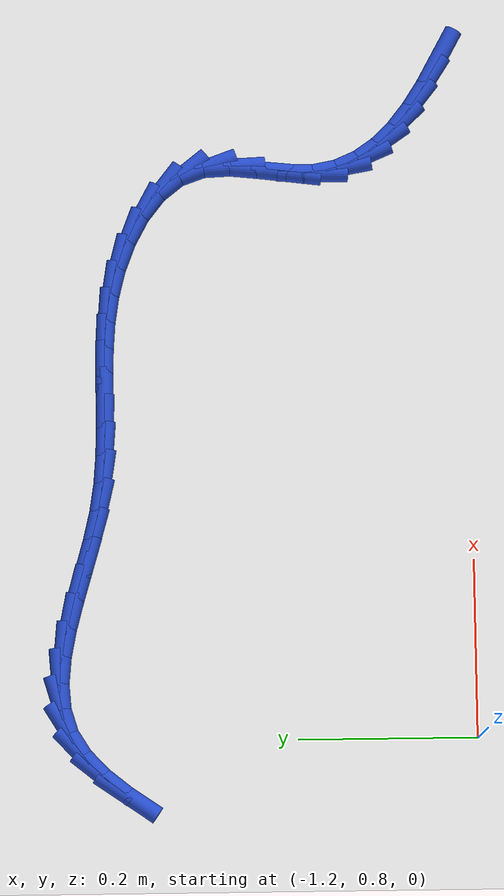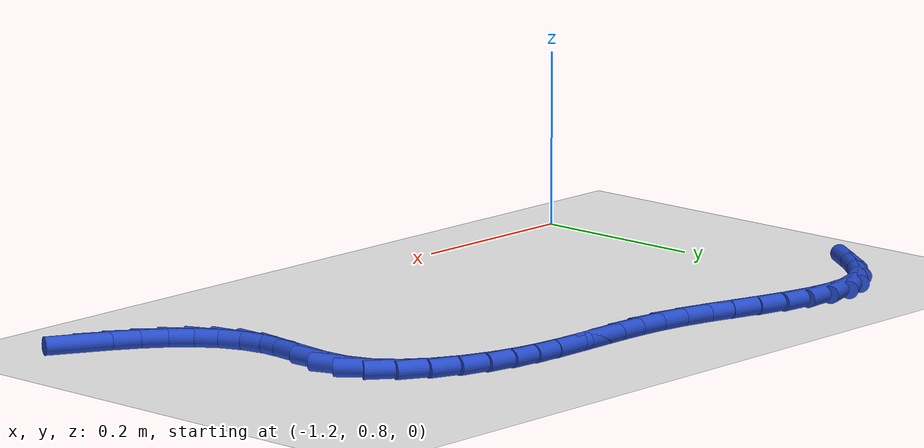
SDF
<sdf version="1.6">
 <world name="default">
  <model name="ground_plane">
   <static>1</static>
   <link name="link">
    <collision name="collision">
     <geometry><plane><normal>0 0 1</normal><size>100 100</size></plane></geometry>
     <surface><friction><ode><mu>100</mu><mu2>50</mu2></ode></friction></surface>
    </collision>
    <visual name="visual">
     <cast_shadows>0</cast_shadows>
     <geometry><plane><normal>0 0 1</normal><size>100 100</size></plane></geometry>
     <material>
      <script><uri>file://media/materials/scripts/gazebo.material</uri><name>Gazebo/WhiteGlow</name></script>
     </material>
    </visual>
   </link>
  </model>
  <model name="line">
   <link name="link_32">
    <pose>-0.4301493578791611 0.8303120803442311 0.01 0 1.57 -0.5000535907732365</pose>
    <collision name="collision">
     <geometry><cylinder><radius>0.01</radius><length>0.08</length></cylinder></geometry>
    </collision>
    <visual name="visual">
     <material>
      <script><name>Gazebo/Blue</name><uri>file://media/materials/scripts/gazebo.material</uri></script>
     </material>
     <geometry><cylinder><radius>0.01</radius><length>0.08</length></cylinder></geometry>
    </visual>
   </link>
   <link name="link_33">
    <pose>-0.4589386479684631 0.8460417445549768 0.01 0 1.57 -0.5705406208517386</pose>
    <collision name="collision">
     <geometry><cylinder><radius>0.01</radius><length>0.08</length></cylinder></geometry>
    </collision>
    <visual name="visual">
     <material>
      <script><name>Gazebo/Blue</name><uri>file://media/materials/scripts/gazebo.material</uri></script>
     </material>
     <geometry><cylinder><radius>0.01</radius><length>0.08</length></cylinder></geometry>
    </visual>
   </link>
   <link name="link_34">
    <pose>-0.4851997209454305 0.8628943035179809 0.01 0 1.57 -0.6680112293867284</pose>
    <collision name="collision">
     <geometry><cylinder><radius>0.01</radius><length>0.08</length></cylinder></geometry>
    </collision>
    <visual name="visual">
     <material>
      <script><name>Gazebo/Blue</name><uri>file://media/materials/scripts/gazebo.material</uri></script>
     </material>
     <geometry><cylinder><radius>0.01</radius><length>0.08</length></cylinder></geometry>
    </visual>
   </link>
   <link name="link_35">
    <pose>-0.5083643654585064 0.8811717224592412 0.01 0 1.57 -0.7981616529215781</pose>
    <collision name="collision">
     <geometry><cylinder><radius>0.01</radius><length>0.08</length></cylinder></geometry>
    </collision>
    <visual name="visual">
     <material>
      <script><name>Gazebo/Blue</name><uri>file://media/materials/scripts/gazebo.material</uri></script>
     </material>
     <geometry><cylinder><radius>0.01</radius><length>0.08</length></cylinder></geometry>
    </visual>
   </link>
   <link name="link_36">
    <pose>-0.5278643701561339 0.9011759666047564 0.01 0 1.57 -0.964837150017176</pose>
    <collision name="collision">
     <geometry><cylinder><radius>0.01</radius><length>0.08</length></cylinder></geometry>
    </collision>
    <visual name="visual">
     <material>
      <script><name>Gazebo/Blue</name><uri>file://media/materials/scripts/gazebo.material</uri></script>
     </material>
     <geometry><cylinder><radius>0.01</radius><length>0.08</length></cylinder></geometry>
    </visual>
   </link>
   <link name="link_37">
    <pose>-0.5431315236867555 0.9232090011805236 0.01 0 1.57 -1.165056455571028</pose>
    <collision name="collision">
     <geometry><cylinder><radius>0.01</radius><length>0.08</length></cylinder></geometry>
    </collision>
    <visual name="visual">
     <material>
      <script><name>Gazebo/Blue</name><uri>file://media/materials/scripts/gazebo.material</uri></script>
     </material>
     <geometry><cylinder><radius>0.01</radius><length>0.08</length></cylinder></geometry>
    </visual>
   </link>
   <link name="link_38">
    <pose>-0.5535976146988142 0.9475727914125407 0.01 0 1.57 -1.3841972647437364</pose>
    <collision name="collision">
     <geometry><cylinder><radius>0.01</radius><length>0.08</length></cylinder></geometry>
    </collision>
    <visual name="visual">
     <material>
      <script><name>Gazebo/Blue</name><uri>file://media/materials/scripts/gazebo.material</uri></script>
     </material>
     <geometry><cylinder><radius>0.01</radius><length>0.08</length></cylinder></geometry>
    </visual>
   </link>
   <link name="link_39">
    <pose>-0.5586944318407532 0.9745693025268061 0.01 0 1.57 1.5515692944739972</pose>
    <collision name="collision">
     <geometry><cylinder><radius>0.01</radius><length>0.08</length></cylinder></geometry>
    </collision>
    <visual name="visual">
     <material>
      <script><name>Gazebo/Blue</name><uri>file://media/materials/scripts/gazebo.material</uri></script>
     </material>
     <geometry><cylinder><radius>0.01</radius><length>0.08</length></cylinder></geometry>
    </visual>
   </link>
   <link name="link_40">
    <pose>-0.558121068033776 1.004386340444647 0.01 0 1.57 1.4497419668480511</pose>
    <collision name="collision">
     <geometry><cylinder><radius>0.01</radius><length>0.08</length></cylinder></geometry>
    </collision>
    <visual name="visual">
     <material>
      <script><name>Gazebo/Blue</name><uri>file://media/materials/scripts/gazebo.material</uri></script>
     </material>
     <geometry><cylinder><radius>0.01</radius><length>0.08</length></cylinder></geometry>
    </visual>
   </link>
   <link name="link_41">
    <pose>-0.5542677003114657 1.0360624129938558 0.01 0 1.57 1.4712720267406707</pose>
    <collision name="collision">
     <geometry><cylinder><radius>0.01</radius><length>0.08</length></cylinder></geometry>
    </collision>
    <visual name="visual">
     <material>
      <script><name>Gazebo/Blue</name><uri>file://media/materials/scripts/gazebo.material</uri></script>
     </material>
     <geometry><cylinder><radius>0.01</radius><length>0.08</length></cylinder></geometry>
    </visual>
   </link>
   <link name="link_42">
    <pose>-0.5510814858198664 1.067971078784661 0.01 0 1.57 -1.5233975627310024</pose>
    <collision name="collision">
     <geometry><cylinder><radius>0.01</radius><length>0.08</length></cylinder></geometry>
    </collision>
    <visual name="visual">
     <material>
      <script><name>Gazebo/Blue</name><uri>file://media/materials/scripts/gazebo.material</uri></script>
     </material>
     <geometry><cylinder><radius>0.01</radius><length>0.08</length></cylinder></geometry>
    </visual>
   </link>
   <link name="link_43">
    <pose>-0.5525285503235546 1.0984777953809441 0.01 0 1.57 -1.2261778521186517</pose>
    <collision name="collision">
     <geometry><cylinder><radius>0.01</radius><length>0.08</length></cylinder></geometry>
    </collision>
    <visual name="visual">
     <material>
      <script><name>Gazebo/Blue</name><uri>file://media/materials/scripts/gazebo.material</uri></script>
     </material>
     <geometry><cylinder><radius>0.01</radius><length>0.08</length></cylinder></geometry>
    </visual>
   </link>
   <link name="link_44">
    <pose>-0.562403459420681 1.1259889658442297 0.01 0 1.57 -0.8995294904261377</pose>
    <collision name="collision">
     <geometry><cylinder><radius>0.01</radius><length>0.08</length></cylinder></geometry>
    </collision>
    <visual name="visual">
     <material>
      <script><name>Gazebo/Blue</name><uri>file://media/materials/scripts/gazebo.material</uri></script>
     </material>
     <geometry><cylinder><radius>0.01</radius><length>0.08</length></cylinder></geometry>
    </visual>
   </link>
   <link name="link_45">
    <pose>-0.5812307617381497 1.14969143356187 0.01 0 1.57 -0.6622195922462348</pose>
    <collision name="collision">
     <geometry><cylinder><radius>0.01</radius><length>0.08</length></cylinder></geometry>
    </collision>
    <visual name="visual">
     <material>
      <script><name>Gazebo/Blue</name><uri>file://media/materials/scripts/gazebo.material</uri></script>
     </material>
     <geometry><cylinder><radius>0.01</radius><length>0.08</length></cylinder></geometry>
    </visual>
   </link>
   <link name="link_46">
    <pose>-0.6066014927486344 1.1694721703860071 0.01 0 1.57 -0.4923419884603313</pose>
    <collision name="collision">
     <geometry><cylinder><radius>0.01</radius><length>0.08</length></cylinder></geometry>
    </collision>
    <visual name="visual">
     <material>
      <script><name>Gazebo/Blue</name><uri>file://media/materials/scripts/gazebo.material</uri></script>
     </material>
     <geometry><cylinder><radius>0.01</radius><length>0.08</length></cylinder></geometry>
    </visual>
   </link>
   <link name="link_47">
    <pose>-0.6360026774160213 1.1852429718917425 0.01 0 1.57 -0.36097903088992506</pose>
    <collision name="collision">
     <geometry><cylinder><radius>0.01</radius><length>0.08</length></cylinder></geometry>
    </collision>
    <visual name="visual">
     <material>
      <script><name>Gazebo/Blue</name><uri>file://media/materials/scripts/gazebo.material</uri></script>
     </material>
     <geometry><cylinder><radius>0.01</radius><length>0.08</length></cylinder></geometry>
    </visual>
   </link>
   <link name="link_48">
    <pose>-0.6669270284989377 1.1969175639346736 0.01 0 1.57 -0.2473888436634144</pose>
    <collision name="collision">
     <geometry><cylinder><radius>0.01</radius><length>0.08</length></cylinder></geometry>
    </collision>
    <visual name="visual">
     <material>
      <script><name>Gazebo/Blue</name><uri>file://media/materials/scripts/gazebo.material</uri></script>
     </material>
     <geometry><cylinder><radius>0.01</radius><length>0.08</length></cylinder></geometry>
    </visual>
   </link>
   <link name="link_49">
    <pose>-0.6976697806847293 1.2046820261555424 0.01 0 1.57 -0.14951673683604147</pose>
    <collision name="collision">
     <geometry><cylinder><radius>0.01</radius><length>0.08</length></cylinder></geometry>
    </collision>
    <visual name="visual">
     <material>
      <script><name>Gazebo/Blue</name><uri>file://media/materials/scripts/gazebo.material</uri></script>
     </material>
     <geometry><cylinder><radius>0.01</radius><length>0.08</length></cylinder></geometry>
    </visual>
   </link>
   <link name="link_50">
    <pose>-0.7281503905147529 1.2092736542479174 0.01 0 1.57 -0.07314154999572284</pose>
    <collision name="collision">
     <geometry><cylinder><radius>0.01</radius><length>0.08</length></cylinder></geometry>
    </collision>
    <visual name="visual">
     <material>
      <script><name>Gazebo/Blue</name><uri>file://media/materials/scripts/gazebo.material</uri></script>
     </material>
     <geometry><cylinder><radius>0.01</radius><length>0.08</length></cylinder></geometry>
    </visual>
   </link>
   <link name="link_51">
    <pose>-0.7584844214644552 1.2114962971843248 0.01 0 1.57 -0.021694329339553755</pose>
    <collision name="collision">
     <geometry><cylinder><radius>0.01</radius><length>0.08</length></cylinder></geometry>
    </collision>
    <visual name="visual">
     <material>
      <script><name>Gazebo/Blue</name><uri>file://media/materials/scripts/gazebo.material</uri></script>
     </material>
     <geometry><cylinder><radius>0.01</radius><length>0.08</length></cylinder></geometry>
    </visual>
   </link>
   <link name="link_52">
    <pose>-0.7887874370092834 1.2121538039372923 0.01 0 1.57 0.0034152147165017427</pose>
    <collision name="collision">
     <geometry><cylinder><radius>0.01</radius><length>0.08</length></cylinder></geometry>
    </collision>
    <visual name="visual">
     <material>
      <script><name>Gazebo/Blue</name><uri>file://media/materials/scripts/gazebo.material</uri></script>
     </material>
     <geometry><cylinder><radius>0.01</radius><length>0.08</length></cylinder></geometry>
    </visual>
   </link>
   <link name="link_53">
    <pose>-0.8191750006246837 1.2120500234793463 0.01 0 1.57 0.0020014144347377232</pose>
    <collision name="collision">
     <geometry><cylinder><radius>0.01</radius><length>0.08</length></cylinder></geometry>
    </collision>
    <visual name="visual">
     <material>
      <script><name>Gazebo/Blue</name><uri>file://media/materials/scripts/gazebo.material</uri></script>
     </material>
     <geometry><cylinder><radius>0.01</radius><length>0.08</length></cylinder></geometry>
    </visual>
   </link>
   <link name="link_54">
    <pose>-0.8497626757861023 1.2119888047830127 0.01 0 1.57 -0.02540252542686296</pose>
    <collision name="collision">
     <geometry><cylinder><radius>0.01</radius><length>0.08</length></cylinder></geometry>
    </collision>
    <visual name="visual">
     <material>
      <script><name>Gazebo/Blue</name><uri>file://media/materials/scripts/gazebo.material</uri></script>
     </material>
     <geometry><cylinder><radius>0.01</radius><length>0.08</length></cylinder></geometry>
    </visual>
   </link>
   <link name="link_55">
    <pose>-0.8806660259689866 1.2127739968208193 0.01 0 1.57 -0.07756812306483099</pose>
    <collision name="collision">
     <geometry><cylinder><radius>0.01</radius><length>0.08</length></cylinder></geometry>
    </collision>
    <visual name="visual">
     <material>
      <script><name>Gazebo/Blue</name><uri>file://media/materials/scripts/gazebo.material</uri></script>
     </material>
     <geometry><cylinder><radius>0.01</radius><length>0.08</length></cylinder></geometry>
    </visual>
   </link>
   <link name="link_56">
    <pose>-0.9120006146487828 1.215209448565293 0.01 0 1.57 -0.1520966877153726</pose>
    <collision name="collision">
     <geometry><cylinder><radius>0.01</radius><length>0.08</length></cylinder></geometry>
    </collision>
    <visual name="visual">
     <material>
      <script><name>Gazebo/Blue</name><uri>file://media/materials/scripts/gazebo.material</uri></script>
     </material>
     <geometry><cylinder><radius>0.01</radius><length>0.08</length></cylinder></geometry>
    </visual>
   </link>
   <link name="link_57">
    <pose>-0.9438813751879057 1.220096146873792 0.01 0 1.57 -0.22882952763990239</pose>
    <collision name="collision">
     <geometry><cylinder><radius>0.01</radius><length>0.08</length></cylinder></geometry>
    </collision>
    <visual name="visual">
     <material>
      <script><name>Gazebo/Blue</name><uri>file://media/materials/scripts/gazebo.material</uri></script>
     </material>
     <geometry><cylinder><radius>0.01</radius><length>0.08</length></cylinder></geometry>
    </visual>
   </link>
   <link name="link_58">
    <pose>-0.9762933743034014 1.227645195080283 0.01 0 1.57 -0.27230655515974633</pose>
    <collision name="collision">
     <geometry><cylinder><radius>0.01</radius><length>0.08</length></cylinder></geometry>
    </collision>
    <visual name="visual">
     <material>
      <script><name>Gazebo/Blue</name><uri>file://media/materials/scripts/gazebo.material</uri></script>
     </material>
     <geometry><cylinder><radius>0.01</radius><length>0.08</length></cylinder></geometry>
    </visual>
   </link>
   <link name="link_59">
    <pose>-1.0089337336813127 1.2367597853999692 0.01 0 1.57 -0.28154102459989777</pose>
    <collision name="collision">
     <geometry><cylinder><radius>0.01</radius><length>0.08</length></cylinder></geometry>
    </collision>
    <visual name="visual">
     <material>
      <script><name>Gazebo/Blue</name><uri>file://media/materials/scripts/gazebo.material</uri></script>
     </material>
     <geometry><cylinder><radius>0.01</radius><length>0.08</length></cylinder></geometry>
    </visual>
   </link>
   <link name="link_60">
    <pose>-1.0414608923130513 1.2461674045453985 0.01 0 1.57 -0.25697464401926773</pose>
    <collision name="collision">
     <geometry><cylinder><radius>0.01</radius><length>0.08</length></cylinder></geometry>
    </collision>
    <visual name="visual">
     <material>
      <script><name>Gazebo/Blue</name><uri>file://media/materials/scripts/gazebo.material</uri></script>
     </material>
     <geometry><cylinder><radius>0.01</radius><length>0.08</length></cylinder></geometry>
    </visual>
   </link>
   <link name="link_61">
    <pose>-1.0735332891900293 1.2545955392291184 0.01 0 1.57 -0.19496324466805642</pose>
    <collision name="collision">
     <geometry><cylinder><radius>0.01</radius><length>0.08</length></cylinder></geometry>
    </collision>
    <visual name="visual">
     <material>
      <script><name>Gazebo/Blue</name><uri>file://media/materials/scripts/gazebo.material</uri></script>
     </material>
     <geometry><cylinder><radius>0.01</radius><length>0.08</length></cylinder></geometry>
    </visual>
   </link>
   <link name="link_62">
    <pose>-1.1048093633036586 1.2607716761636778 0.01 0 1.57 -0.08775628201706266</pose>
    <collision name="collision">
     <geometry><cylinder><radius>0.01</radius><length>0.08</length></cylinder></geometry>
    </collision>
    <visual name="visual">
     <material>
      <script><name>Gazebo/Blue</name><uri>file://media/materials/scripts/gazebo.material</uri></script>
     </material>
     <geometry><cylinder><radius>0.01</radius><length>0.08</length></cylinder></geometry>
    </visual>
   </link>
   <link name="link_63">
    <pose>-1.1349475536453517 1.2634233020616232 0.01 0 1.57 0.07472079359729969</pose>
    <collision name="collision">
     <geometry><cylinder><radius>0.01</radius><length>0.08</length></cylinder></geometry>
    </collision>
    <visual name="visual">
     <material>
      <script><name>Gazebo/Blue</name><uri>file://media/materials/scripts/gazebo.material</uri></script>
     </material>
     <geometry><cylinder><radius>0.01</radius><length>0.08</length></cylinder></geometry>
    </visual>
   </link>
   <link name="link_64">
    <pose>-1.1636062992065208 1.2612779036355042 0.01 0 1.57 0.29704041245757973</pose>
    <collision name="collision">
     <geometry><cylinder><radius>0.01</radius><length>0.08</length></cylinder></geometry>
    </collision>
    <visual name="visual">
     <material>
      <script><name>Gazebo/Blue</name><uri>file://media/materials/scripts/gazebo.material</uri></script>
     </material>
     <geometry><cylinder><radius>0.01</radius><length>0.08</length></cylinder></geometry>
    </visual>
   </link>
   <link name="link_65">
    <pose>-1.190444038978578 1.253062967597868 0.01 0 1.57 0.5567811980949366</pose>
    <collision name="collision">
     <geometry><cylinder><radius>0.01</radius><length>0.08</length></cylinder></geometry>
    </collision>
    <visual name="visual">
     <material>
      <script><name>Gazebo/Blue</name><uri>file://media/materials/scripts/gazebo.material</uri></script>
     </material>
     <geometry><cylinder><radius>0.01</radius><length>0.08</length></cylinder></geometry>
    </visual>
   </link>
   <link name="link_66">
    <pose>-1.2151617124431957 1.2376768449890503 0.01 0 1.57 0.765497317994727</pose>
    <collision name="collision">
     <geometry><cylinder><radius>0.01</radius><length>0.08</length></cylinder></geometry>
    </collision>
    <visual name="visual">
     <material>
      <script><name>Gazebo/Blue</name><uri>file://media/materials/scripts/gazebo.material</uri></script>
     </material>
     <geometry><cylinder><radius>0.01</radius><length>0.08</length></cylinder></geometry>
    </visual>
   </link>
   <link name="link_67">
    <pose>-1.237908082719474 1.2158182680757241 0.01 0 1.57 0.8972155700384897</pose>
    <collision name="collision">
     <geometry><cylinder><radius>0.01</radius><length>0.08</length></cylinder></geometry>
    </collision>
    <visual name="visual">
     <material>
      <script><name>Gazebo/Blue</name><uri>file://media/materials/scripts/gazebo.material</uri></script>
     </material>
     <geometry><cylinder><radius>0.01</radius><length>0.08</length></cylinder></geometry>
    </visual>
   </link>
   <link name="link_68">
    <pose>-1.2591002882071234 1.1892649157822357 0.01 0 1.57 0.9729503713252979</pose>
    <collision name="collision">
     <geometry><cylinder><radius>0.01</radius><length>0.08</length></cylinder></geometry>
    </collision>
    <visual name="visual">
     <material>
      <script><name>Gazebo/Blue</name><uri>file://media/materials/scripts/gazebo.material</uri></script>
     </material>
     <geometry><cylinder><radius>0.01</radius><length>0.08</length></cylinder></geometry>
    </visual>
   </link>
  </model>
 </world>
</sdf>
